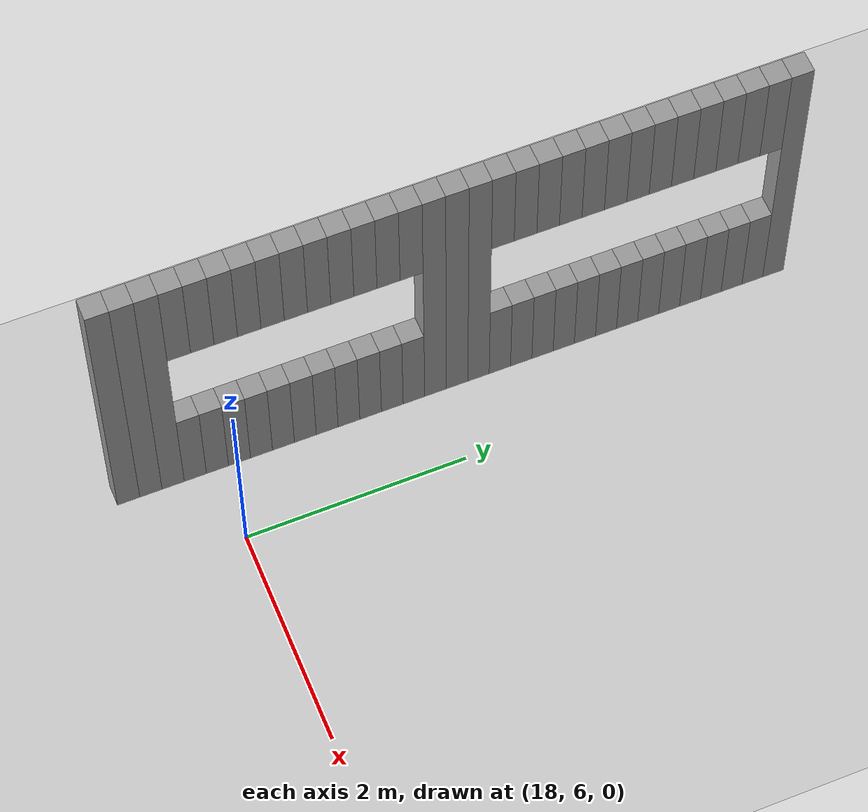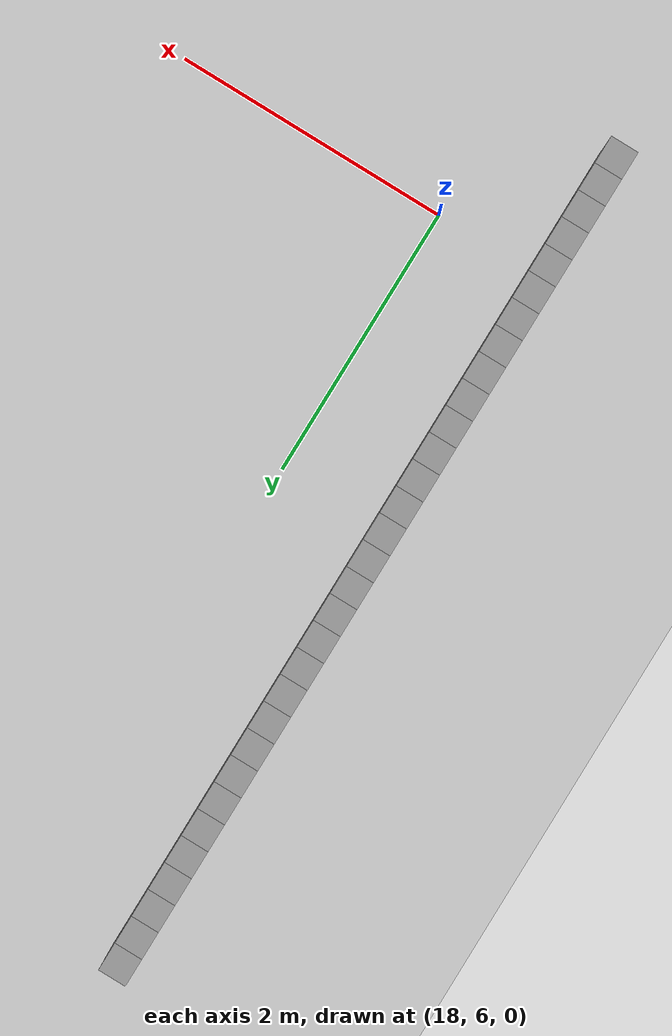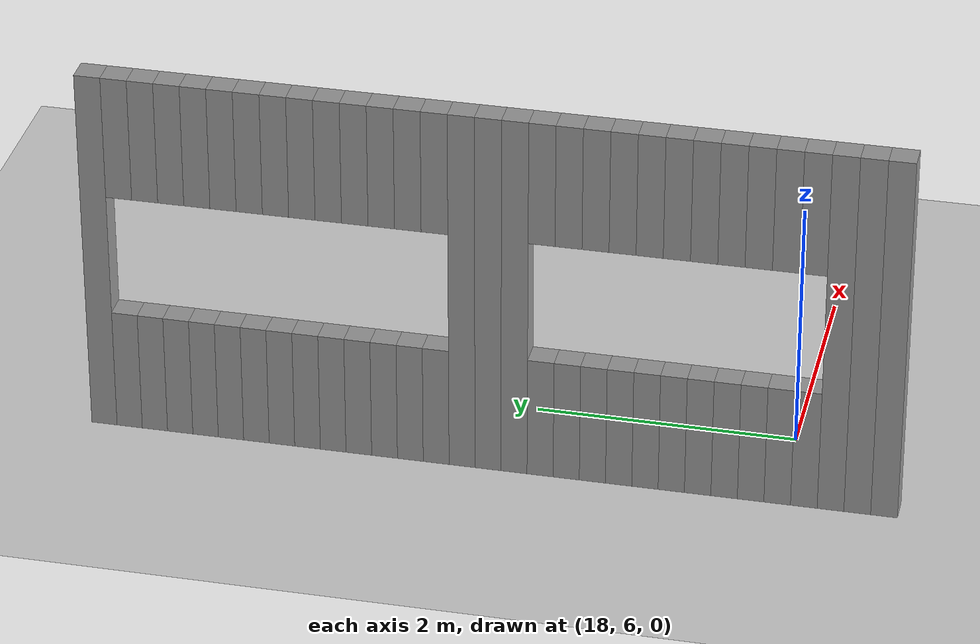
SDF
<sdf version="1.7">
 <world name="default">
  <model name="ground_plane">
   <static>1</static>
   <link name="link">
    <collision name="collision">
     <geometry><plane><normal>0 0 1</normal><size>100 100</size></plane></geometry>
     <surface>
      <contact><collide_bitmask>65535</collide_bitmask></contact>
      <friction><ode><mu>100</mu><mu2>50</mu2></ode></friction>
     </surface>
    </collision>
    <visual name="visual">
     <cast_shadows>0</cast_shadows>
     <geometry><plane><normal>0 0 1</normal><size>100 100</size></plane></geometry>
     <material>
      <script><uri>file://media/materials/scripts/gazebo.material</uri><name>Gazebo/Grey</name></script>
     </material>
    </visual>
   </link>
  </model>
  <model name="05222">
   <pose>-1 -1 0 0 -0 0</pose>
   <link name="Wall_328">
    <collision name="Wall_328_Collision">
     <geometry><box><size>0.2 0.2 3</size></box></geometry>
     <pose>0 0 1.5 0 -0 0</pose>
    </collision>
    <visual name="Wall_328_Visual">
     <pose>0 0 1.5 0 -0 0</pose>
     <geometry><box><size>0.2 0.2 3</size></box></geometry>
     <material>
      <script><uri>file://media/materials/scripts/gazebo.material</uri><name>Gazebo/Grey</name></script>
      <ambient>1 1 1 1</ambient>
     </material>
     <meta><layer>0</layer></meta>
    </visual>
    <pose>18.2 6.2 0 0 -0 0</pose>
   </link>
   <link name="Wall_332">
    <collision name="Wall_332_Collision">
     <geometry><box><size>0.2 0.2 3</size></box></geometry>
     <pose>0 0 1.5 0 -0 0</pose>
    </collision>
    <visual name="Wall_332_Visual">
     <pose>0 0 1.5 0 -0 0</pose>
     <geometry><box><size>0.2 0.2 3</size></box></geometry>
     <material>
      <script><uri>file://media/materials/scripts/gazebo.material</uri><name>Gazebo/Grey</name></script>
      <ambient>1 1 1 1</ambient>
     </material>
     <meta><layer>0</layer></meta>
    </visual>
    <pose>18.2 6.4 0 0 -0 0</pose>
   </link>
   <link name="Wall_336">
    <collision name="Wall_336_Collision">
     <geometry><box><size>0.2 0.2 3</size></box></geometry>
     <pose>0 0 1.5 0 -0 0</pose>
    </collision>
    <visual name="Wall_336_Visual">
     <pose>0 0 1.5 0 -0 0</pose>
     <geometry><box><size>0.2 0.2 3</size></box></geometry>
     <material>
      <script><uri>file://media/materials/scripts/gazebo.material</uri><name>Gazebo/Grey</name></script>
      <ambient>1 1 1 1</ambient>
     </material>
     <meta><layer>0</layer></meta>
    </visual>
    <pose>18.2 6.6000000000000005 0 0 -0 0</pose>
   </link>
   <link name="Wall_340">
    <collision name="Wall_340_Collision">
     <geometry><box><size>0.2 0.2 1.0</size></box></geometry>
     <pose>0 0 0.5 0 -0 0</pose>
    </collision>
    <visual name="Wall_340_Visual">
     <pose>0 0 0.5 0 -0 0</pose>
     <geometry><box><size>0.2 0.2 1.0</size></box></geometry>
     <material>
      <script><uri>file://media/materials/scripts/gazebo.material</uri><name>Gazebo/Grey</name></script>
      <ambient>1 1 1 1</ambient>
     </material>
     <meta><layer>0</layer></meta>
    </visual>
    <pose>18.2 6.800000000000001 0 0 -0 0</pose>
   </link>
   <link name="Wall_341">
    <collision name="Wall_341_Collision">
     <geometry><box><size>0.2 0.2 1.0</size></box></geometry>
     <pose>0 0 2.5 0 -0 0</pose>
    </collision>
    <visual name="Wall_341_Visual">
     <pose>0 0 2.5 0 -0 0</pose>
     <geometry><box><size>0.2 0.2 1.0</size></box></geometry>
     <material>
      <script><uri>file://media/materials/scripts/gazebo.material</uri><name>Gazebo/Grey</name></script>
      <ambient>1 1 1 1</ambient>
     </material>
     <meta><layer>0</layer></meta>
    </visual>
    <pose>18.2 6.800000000000001 0 0 -0 0</pose>
   </link>
   <link name="Window_340">
    <collision name="Window_340_Collision">
     <geometry><box><size>0.2 0.2 1.0</size></box></geometry>
     <pose>0 0 1.5 0 -0 0</pose>
    </collision>
    <visual name="Wall_341_Visual">
     <pose>0 0 2.5 0 -0 0</pose>
     <geometry><box><size>0.2 0.2 1.0</size></box></geometry>
     <material>
      <script><uri>file://media/materials/scripts/gazebo.material</uri><name>Gazebo/Grey</name></script>
      <ambient>1 1 1 1</ambient>
     </material>
     <meta><layer>0</layer></meta>
    </visual>
    <pose>18.2 6.800000000000001 0 0 -0 0</pose>
   </link>
   <link name="Wall_345">
    <collision name="Wall_345_Collision">
     <geometry><box><size>0.2 0.2 1.0</size></box></geometry>
     <pose>0 0 0.5 0 -0 0</pose>
    </collision>
    <visual name="Wall_345_Visual">
     <pose>0 0 0.5 0 -0 0</pose>
     <geometry><box><size>0.2 0.2 1.0</size></box></geometry>
     <material>
      <script><uri>file://media/materials/scripts/gazebo.material</uri><name>Gazebo/Grey</name></script>
      <ambient>1 1 1 1</ambient>
     </material>
     <meta><layer>0</layer></meta>
    </visual>
    <pose>18.2 7.0 0 0 -0 0</pose>
   </link>
   <link name="Wall_346">
    <collision name="Wall_346_Collision">
     <geometry><box><size>0.2 0.2 1.0</size></box></geometry>
     <pose>0 0 2.5 0 -0 0</pose>
    </collision>
    <visual name="Wall_346_Visual">
     <pose>0 0 2.5 0 -0 0</pose>
     <geometry><box><size>0.2 0.2 1.0</size></box></geometry>
     <material>
      <script><uri>file://media/materials/scripts/gazebo.material</uri><name>Gazebo/Grey</name></script>
      <ambient>1 1 1 1</ambient>
     </material>
     <meta><layer>0</layer></meta>
    </visual>
    <pose>18.2 7.0 0 0 -0 0</pose>
   </link>
   <link name="Window_345">
    <collision name="Window_345_Collision">
     <geometry><box><size>0.2 0.2 1.0</size></box></geometry>
     <pose>0 0 1.5 0 -0 0</pose>
    </collision>
    <visual name="Wall_346_Visual">
     <pose>0 0 2.5 0 -0 0</pose>
     <geometry><box><size>0.2 0.2 1.0</size></box></geometry>
     <material>
      <script><uri>file://media/materials/scripts/gazebo.material</uri><name>Gazebo/Grey</name></script>
      <ambient>1 1 1 1</ambient>
     </material>
     <meta><layer>0</layer></meta>
    </visual>
    <pose>18.2 7.0 0 0 -0 0</pose>
   </link>
   <link name="Wall_349">
    <collision name="Wall_349_Collision">
     <geometry><box><size>0.2 0.2 1.0</size></box></geometry>
     <pose>0 0 0.5 0 -0 0</pose>
    </collision>
    <visual name="Wall_349_Visual">
     <pose>0 0 0.5 0 -0 0</pose>
     <geometry><box><size>0.2 0.2 1.0</size></box></geometry>
     <material>
      <script><uri>file://media/materials/scripts/gazebo.material</uri><name>Gazebo/Grey</name></script>
      <ambient>1 1 1 1</ambient>
     </material>
     <meta><layer>0</layer></meta>
    </visual>
    <pose>18.2 7.2 0 0 -0 0</pose>
   </link>
   <link name="Wall_350">
    <collision name="Wall_350_Collision">
     <geometry><box><size>0.2 0.2 1.0</size></box></geometry>
     <pose>0 0 2.5 0 -0 0</pose>
    </collision>
    <visual name="Wall_350_Visual">
     <pose>0 0 2.5 0 -0 0</pose>
     <geometry><box><size>0.2 0.2 1.0</size></box></geometry>
     <material>
      <script><uri>file://media/materials/scripts/gazebo.material</uri><name>Gazebo/Grey</name></script>
      <ambient>1 1 1 1</ambient>
     </material>
     <meta><layer>0</layer></meta>
    </visual>
    <pose>18.2 7.2 0 0 -0 0</pose>
   </link>
   <link name="Window_349">
    <collision name="Window_349_Collision">
     <geometry><box><size>0.2 0.2 1.0</size></box></geometry>
     <pose>0 0 1.5 0 -0 0</pose>
    </collision>
    <visual name="Wall_350_Visual">
     <pose>0 0 2.5 0 -0 0</pose>
     <geometry><box><size>0.2 0.2 1.0</size></box></geometry>
     <material>
      <script><uri>file://media/materials/scripts/gazebo.material</uri><name>Gazebo/Grey</name></script>
      <ambient>1 1 1 1</ambient>
     </material>
     <meta><layer>0</layer></meta>
    </visual>
    <pose>18.2 7.2 0 0 -0 0</pose>
   </link>
   <link name="Wall_352">
    <collision name="Wall_352_Collision">
     <geometry><box><size>0.2 0.2 1.0</size></box></geometry>
     <pose>0 0 0.5 0 -0 0</pose>
    </collision>
    <visual name="Wall_352_Visual">
     <pose>0 0 0.5 0 -0 0</pose>
     <geometry><box><size>0.2 0.2 1.0</size></box></geometry>
     <material>
      <script><uri>file://media/materials/scripts/gazebo.material</uri><name>Gazebo/Grey</name></script>
      <ambient>1 1 1 1</ambient>
     </material>
     <meta><layer>0</layer></meta>
    </visual>
    <pose>18.2 7.4 0 0 -0 0</pose>
   </link>
   <link name="Wall_353">
    <collision name="Wall_353_Collision">
     <geometry><box><size>0.2 0.2 1.0</size></box></geometry>
     <pose>0 0 2.5 0 -0 0</pose>
    </collision>
    <visual name="Wall_353_Visual">
     <pose>0 0 2.5 0 -0 0</pose>
     <geometry><box><size>0.2 0.2 1.0</size></box></geometry>
     <material>
      <script><uri>file://media/materials/scripts/gazebo.material</uri><name>Gazebo/Grey</name></script>
      <ambient>1 1 1 1</ambient>
     </material>
     <meta><layer>0</layer></meta>
    </visual>
    <pose>18.2 7.4 0 0 -0 0</pose>
   </link>
   <link name="Window_352">
    <collision name="Window_352_Collision">
     <geometry><box><size>0.2 0.2 1.0</size></box></geometry>
     <pose>0 0 1.5 0 -0 0</pose>
    </collision>
    <visual name="Wall_353_Visual">
     <pose>0 0 2.5 0 -0 0</pose>
     <geometry><box><size>0.2 0.2 1.0</size></box></geometry>
     <material>
      <script><uri>file://media/materials/scripts/gazebo.material</uri><name>Gazebo/Grey</name></script>
      <ambient>1 1 1 1</ambient>
     </material>
     <meta><layer>0</layer></meta>
    </visual>
    <pose>18.2 7.4 0 0 -0 0</pose>
   </link>
   <link name="Wall_355">
    <collision name="Wall_355_Collision">
     <geometry><box><size>0.2 0.2 1.0</size></box></geometry>
     <pose>0 0 0.5 0 -0 0</pose>
    </collision>
    <visual name="Wall_355_Visual">
     <pose>0 0 0.5 0 -0 0</pose>
     <geometry><box><size>0.2 0.2 1.0</size></box></geometry>
     <material>
      <script><uri>file://media/materials/scripts/gazebo.material</uri><name>Gazebo/Grey</name></script>
      <ambient>1 1 1 1</ambient>
     </material>
     <meta><layer>0</layer></meta>
    </visual>
    <pose>18.2 7.6000000000000005 0 0 -0 0</pose>
   </link>
   <link name="Wall_356">
    <collision name="Wall_356_Collision">
     <geometry><box><size>0.2 0.2 1.0</size></box></geometry>
     <pose>0 0 2.5 0 -0 0</pose>
    </collision>
    <visual name="Wall_356_Visual">
     <pose>0 0 2.5 0 -0 0</pose>
     <geometry><box><size>0.2 0.2 1.0</size></box></geometry>
     <material>
      <script><uri>file://media/materials/scripts/gazebo.material</uri><name>Gazebo/Grey</name></script>
      <ambient>1 1 1 1</ambient>
     </material>
     <meta><layer>0</layer></meta>
    </visual>
    <pose>18.2 7.6000000000000005 0 0 -0 0</pose>
   </link>
   <link name="Window_355">
    <collision name="Window_355_Collision">
     <geometry><box><size>0.2 0.2 1.0</size></box></geometry>
     <pose>0 0 1.5 0 -0 0</pose>
    </collision>
    <visual name="Wall_356_Visual">
     <pose>0 0 2.5 0 -0 0</pose>
     <geometry><box><size>0.2 0.2 1.0</size></box></geometry>
     <material>
      <script><uri>file://media/materials/scripts/gazebo.material</uri><name>Gazebo/Grey</name></script>
      <ambient>1 1 1 1</ambient>
     </material>
     <meta><layer>0</layer></meta>
    </visual>
    <pose>18.2 7.6000000000000005 0 0 -0 0</pose>
   </link>
   <link name="Wall_359">
    <collision name="Wall_359_Collision">
     <geometry><box><size>0.2 0.2 1.0</size></box></geometry>
     <pose>0 0 0.5 0 -0 0</pose>
    </collision>
    <visual name="Wall_359_Visual">
     <pose>0 0 0.5 0 -0 0</pose>
     <geometry><box><size>0.2 0.2 1.0</size></box></geometry>
     <material>
      <script><uri>file://media/materials/scripts/gazebo.material</uri><name>Gazebo/Grey</name></script>
      <ambient>1 1 1 1</ambient>
     </material>
     <meta><layer>0</layer></meta>
    </visual>
    <pose>18.2 7.800000000000001 0 0 -0 0</pose>
   </link>
   <link name="Wall_360">
    <collision name="Wall_360_Collision">
     <geometry><box><size>0.2 0.2 1.0</size></box></geometry>
     <pose>0 0 2.5 0 -0 0</pose>
    </collision>
    <visual name="Wall_360_Visual">
     <pose>0 0 2.5 0 -0 0</pose>
     <geometry><box><size>0.2 0.2 1.0</size></box></geometry>
     <material>
      <script><uri>file://media/materials/scripts/gazebo.material</uri><name>Gazebo/Grey</name></script>
      <ambient>1 1 1 1</ambient>
     </material>
     <meta><layer>0</layer></meta>
    </visual>
    <pose>18.2 7.800000000000001 0 0 -0 0</pose>
   </link>
   <link name="Window_359">
    <collision name="Window_359_Collision">
     <geometry><box><size>0.2 0.2 1.0</size></box></geometry>
     <pose>0 0 1.5 0 -0 0</pose>
    </collision>
    <visual name="Wall_360_Visual">
     <pose>0 0 2.5 0 -0 0</pose>
     <geometry><box><size>0.2 0.2 1.0</size></box></geometry>
     <material>
      <script><uri>file://media/materials/scripts/gazebo.material</uri><name>Gazebo/Grey</name></script>
      <ambient>1 1 1 1</ambient>
     </material>
     <meta><layer>0</layer></meta>
    </visual>
    <pose>18.2 7.800000000000001 0 0 -0 0</pose>
   </link>
   <link name="Wall_363">
    <collision name="Wall_363_Collision">
     <geometry><box><size>0.2 0.2 1.0</size></box></geometry>
     <pose>0 0 0.5 0 -0 0</pose>
    </collision>
    <visual name="Wall_363_Visual">
     <pose>0 0 0.5 0 -0 0</pose>
     <geometry><box><size>0.2 0.2 1.0</size></box></geometry>
     <material>
      <script><uri>file://media/materials/scripts/gazebo.material</uri><name>Gazebo/Grey</name></script>
      <ambient>1 1 1 1</ambient>
     </material>
     <meta><layer>0</layer></meta>
    </visual>
    <pose>18.2 8.0 0 0 -0 0</pose>
   </link>
   <link name="Wall_364">
    <collision name="Wall_364_Collision">
     <geometry><box><size>0.2 0.2 1.0</size></box></geometry>
     <pose>0 0 2.5 0 -0 0</pose>
    </collision>
    <visual name="Wall_364_Visual">
     <pose>0 0 2.5 0 -0 0</pose>
     <geometry><box><size>0.2 0.2 1.0</size></box></geometry>
     <material>
      <script><uri>file://media/materials/scripts/gazebo.material</uri><name>Gazebo/Grey</name></script>
      <ambient>1 1 1 1</ambient>
     </material>
     <meta><layer>0</layer></meta>
    </visual>
    <pose>18.2 8.0 0 0 -0 0</pose>
   </link>
   <link name="Window_363">
    <collision name="Window_363_Collision">
     <geometry><box><size>0.2 0.2 1.0</size></box></geometry>
     <pose>0 0 1.5 0 -0 0</pose>
    </collision>
    <visual name="Wall_364_Visual">
     <pose>0 0 2.5 0 -0 0</pose>
     <geometry><box><size>0.2 0.2 1.0</size></box></geometry>
     <material>
      <script><uri>file://media/materials/scripts/gazebo.material</uri><name>Gazebo/Grey</name></script>
      <ambient>1 1 1 1</ambient>
     </material>
     <meta><layer>0</layer></meta>
    </visual>
    <pose>18.2 8.0 0 0 -0 0</pose>
   </link>
   <link name="Wall_367">
    <collision name="Wall_367_Collision">
     <geometry><box><size>0.2 0.2 1.0</size></box></geometry>
     <pose>0 0 0.5 0 -0 0</pose>
    </collision>
    <visual name="Wall_367_Visual">
     <pose>0 0 0.5 0 -0 0</pose>
     <geometry><box><size>0.2 0.2 1.0</size></box></geometry>
     <material>
      <script><uri>file://media/materials/scripts/gazebo.material</uri><name>Gazebo/Grey</name></script>
      <ambient>1 1 1 1</ambient>
     </material>
     <meta><layer>0</layer></meta>
    </visual>
    <pose>18.2 8.200000000000001 0 0 -0 0</pose>
   </link>
   <link name="Wall_368">
    <collision name="Wall_368_Collision">
     <geometry><box><size>0.2 0.2 1.0</size></box></geometry>
     <pose>0 0 2.5 0 -0 0</pose>
    </collision>
    <visual name="Wall_368_Visual">
     <pose>0 0 2.5 0 -0 0</pose>
     <geometry><box><size>0.2 0.2 1.0</size></box></geometry>
     <material>
      <script><uri>file://media/materials/scripts/gazebo.material</uri><name>Gazebo/Grey</name></script>
      <ambient>1 1 1 1</ambient>
     </material>
     <meta><layer>0</layer></meta>
    </visual>
    <pose>18.2 8.200000000000001 0 0 -0 0</pose>
   </link>
   <link name="Window_367">
    <collision name="Window_367_Collision">
     <geometry><box><size>0.2 0.2 1.0</size></box></geometry>
     <pose>0 0 1.5 0 -0 0</pose>
    </collision>
    <visual name="Wall_368_Visual">
     <pose>0 0 2.5 0 -0 0</pose>
     <geometry><box><size>0.2 0.2 1.0</size></box></geometry>
     <material>
      <script><uri>file://media/materials/scripts/gazebo.material</uri><name>Gazebo/Grey</name></script>
      <ambient>1 1 1 1</ambient>
     </material>
     <meta><layer>0</layer></meta>
    </visual>
    <pose>18.2 8.200000000000001 0 0 -0 0</pose>
   </link>
   <link name="Wall_371">
    <collision name="Wall_371_Collision">
     <geometry><box><size>0.2 0.2 1.0</size></box></geometry>
     <pose>0 0 0.5 0 -0 0</pose>
    </collision>
    <visual name="Wall_371_Visual">
     <pose>0 0 0.5 0 -0 0</pose>
     <geometry><box><size>0.2 0.2 1.0</size></box></geometry>
     <material>
      <script><uri>file://media/materials/scripts/gazebo.material</uri><name>Gazebo/Grey</name></script>
      <ambient>1 1 1 1</ambient>
     </material>
     <meta><layer>0</layer></meta>
    </visual>
    <pose>18.2 8.4 0 0 -0 0</pose>
   </link>
   <link name="Wall_372">
    <collision name="Wall_372_Collision">
     <geometry><box><size>0.2 0.2 1.0</size></box></geometry>
     <pose>0 0 2.5 0 -0 0</pose>
    </collision>
    <visual name="Wall_372_Visual">
     <pose>0 0 2.5 0 -0 0</pose>
     <geometry><box><size>0.2 0.2 1.0</size></box></geometry>
     <material>
      <script><uri>file://media/materials/scripts/gazebo.material</uri><name>Gazebo/Grey</name></script>
      <ambient>1 1 1 1</ambient>
     </material>
     <meta><layer>0</layer></meta>
    </visual>
    <pose>18.2 8.4 0 0 -0 0</pose>
   </link>
   <link name="Window_371">
    <collision name="Window_371_Collision">
     <geometry><box><size>0.2 0.2 1.0</size></box></geometry>
     <pose>0 0 1.5 0 -0 0</pose>
    </collision>
    <visual name="Wall_372_Visual">
     <pose>0 0 2.5 0 -0 0</pose>
     <geometry><box><size>0.2 0.2 1.0</size></box></geometry>
     <material>
      <script><uri>file://media/materials/scripts/gazebo.material</uri><name>Gazebo/Grey</name></script>
      <ambient>1 1 1 1</ambient>
     </material>
     <meta><layer>0</layer></meta>
    </visual>
    <pose>18.2 8.4 0 0 -0 0</pose>
   </link>
   <link name="Wall_375">
    <collision name="Wall_375_Collision">
     <geometry><box><size>0.2 0.2 1.0</size></box></geometry>
     <pose>0 0 0.5 0 -0 0</pose>
    </collision>
    <visual name="Wall_375_Visual">
     <pose>0 0 0.5 0 -0 0</pose>
     <geometry><box><size>0.2 0.2 1.0</size></box></geometry>
     <material>
      <script><uri>file://media/materials/scripts/gazebo.material</uri><name>Gazebo/Grey</name></script>
      <ambient>1 1 1 1</ambient>
     </material>
     <meta><layer>0</layer></meta>
    </visual>
    <pose>18.2 8.6 0 0 -0 0</pose>
   </link>
   <link name="Wall_376">
    <collision name="Wall_376_Collision">
     <geometry><box><size>0.2 0.2 1.0</size></box></geometry>
     <pose>0 0 2.5 0 -0 0</pose>
    </collision>
    <visual name="Wall_376_Visual">
     <pose>0 0 2.5 0 -0 0</pose>
     <geometry><box><size>0.2 0.2 1.0</size></box></geometry>
     <material>
      <script><uri>file://media/materials/scripts/gazebo.material</uri><name>Gazebo/Grey</name></script>
      <ambient>1 1 1 1</ambient>
     </material>
     <meta><layer>0</layer></meta>
    </visual>
    <pose>18.2 8.6 0 0 -0 0</pose>
   </link>
   <link name="Window_375">
    <collision name="Window_375_Collision">
     <geometry><box><size>0.2 0.2 1.0</size></box></geometry>
     <pose>0 0 1.5 0 -0 0</pose>
    </collision>
    <visual name="Wall_376_Visual">
     <pose>0 0 2.5 0 -0 0</pose>
     <geometry><box><size>0.2 0.2 1.0</size></box></geometry>
     <material>
      <script><uri>file://media/materials/scripts/gazebo.material</uri><name>Gazebo/Grey</name></script>
      <ambient>1 1 1 1</ambient>
     </material>
     <meta><layer>0</layer></meta>
    </visual>
    <pose>18.2 8.6 0 0 -0 0</pose>
   </link>
   <link name="Wall_418">
    <collision name="Wall_418_Collision">
     <geometry><box><size>0.2 0.2 1.0</size></box></geometry>
     <pose>0 0 0.5 0 -0 0</pose>
    </collision>
    <visual name="Wall_418_Visual">
     <pose>0 0 0.5 0 -0 0</pose>
     <geometry><box><size>0.2 0.2 1.0</size></box></geometry>
     <material>
      <script><uri>file://media/materials/scripts/gazebo.material</uri><name>Gazebo/Grey</name></script>
      <ambient>1 1 1 1</ambient>
     </material>
     <meta><layer>0</layer></meta>
    </visual>
    <pose>18.2 8.8 0 0 -0 0</pose>
   </link>
   <link name="Wall_419">
    <collision name="Wall_419_Collision">
     <geometry><box><size>0.2 0.2 1.0</size></box></geometry>
     <pose>0 0 2.5 0 -0 0</pose>
    </collision>
    <visual name="Wall_419_Visual">
     <pose>0 0 2.5 0 -0 0</pose>
     <geometry><box><size>0.2 0.2 1.0</size></box></geometry>
     <material>
      <script><uri>file://media/materials/scripts/gazebo.material</uri><name>Gazebo/Grey</name></script>
      <ambient>1 1 1 1</ambient>
     </material>
     <meta><layer>0</layer></meta>
    </visual>
    <pose>18.2 8.8 0 0 -0 0</pose>
   </link>
   <link name="Window_418">
    <collision name="Window_418_Collision">
     <geometry><box><size>0.2 0.2 1.0</size></box></geometry>
     <pose>0 0 1.5 0 -0 0</pose>
    </collision>
    <visual name="Wall_419_Visual">
     <pose>0 0 2.5 0 -0 0</pose>
     <geometry><box><size>0.2 0.2 1.0</size></box></geometry>
     <material>
      <script><uri>file://media/materials/scripts/gazebo.material</uri><name>Gazebo/Grey</name></script>
      <ambient>1 1 1 1</ambient>
     </material>
     <meta><layer>0</layer></meta>
    </visual>
    <pose>18.2 8.8 0 0 -0 0</pose>
   </link>
   <link name="Wall_442">
    <collision name="Wall_442_Collision">
     <geometry><box><size>0.2 0.2 3</size></box></geometry>
     <pose>0 0 1.5 0 -0 0</pose>
    </collision>
    <visual name="Wall_442_Visual">
     <pose>0 0 1.5 0 -0 0</pose>
     <geometry><box><size>0.2 0.2 3</size></box></geometry>
     <material>
      <script><uri>file://media/materials/scripts/gazebo.material</uri><name>Gazebo/Grey</name></script>
      <ambient>1 1 1 1</ambient>
     </material>
     <meta><layer>0</layer></meta>
    </visual>
    <pose>18.2 9.0 0 0 -0 0</pose>
   </link>
   <link name="Wall_467">
    <collision name="Wall_467_Collision">
     <geometry><box><size>0.2 0.2 3</size></box></geometry>
     <pose>0 0 1.5 0 -0 0</pose>
    </collision>
    <visual name="Wall_467_Visual">
     <pose>0 0 1.5 0 -0 0</pose>
     <geometry><box><size>0.2 0.2 3</size></box></geometry>
     <material>
      <script><uri>file://media/materials/scripts/gazebo.material</uri><name>Gazebo/Grey</name></script>
      <ambient>1 1 1 1</ambient>
     </material>
     <meta><layer>0</layer></meta>
    </visual>
    <pose>18.2 9.200000000000001 0 0 -0 0</pose>
   </link>
   <link name="Wall_474">
    <collision name="Wall_474_Collision">
     <geometry><box><size>0.2 0.2 3</size></box></geometry>
     <pose>0 0 1.5 0 -0 0</pose>
    </collision>
    <visual name="Wall_474_Visual">
     <pose>0 0 1.5 0 -0 0</pose>
     <geometry><box><size>0.2 0.2 3</size></box></geometry>
     <material>
      <script><uri>file://media/materials/scripts/gazebo.material</uri><name>Gazebo/Grey</name></script>
      <ambient>1 1 1 1</ambient>
     </material>
     <meta><layer>0</layer></meta>
    </visual>
    <pose>18.2 9.4 0 0 -0 0</pose>
   </link>
   <link name="Wall_481">
    <collision name="Wall_481_Collision">
     <geometry><box><size>0.2 0.2 1.0</size></box></geometry>
     <pose>0 0 0.5 0 -0 0</pose>
    </collision>
    <visual name="Wall_481_Visual">
     <pose>0 0 0.5 0 -0 0</pose>
     <geometry><box><size>0.2 0.2 1.0</size></box></geometry>
     <material>
      <script><uri>file://media/materials/scripts/gazebo.material</uri><name>Gazebo/Grey</name></script>
      <ambient>1 1 1 1</ambient>
     </material>
     <meta><layer>0</layer></meta>
    </visual>
    <pose>18.2 9.600000000000001 0 0 -0 0</pose>
   </link>
   <link name="Wall_482">
    <collision name="Wall_482_Collision">
     <geometry><box><size>0.2 0.2 1.0</size></box></geometry>
     <pose>0 0 2.5 0 -0 0</pose>
    </collision>
    <visual name="Wall_482_Visual">
     <pose>0 0 2.5 0 -0 0</pose>
     <geometry><box><size>0.2 0.2 1.0</size></box></geometry>
     <material>
      <script><uri>file://media/materials/scripts/gazebo.material</uri><name>Gazebo/Grey</name></script>
      <ambient>1 1 1 1</ambient>
     </material>
     <meta><layer>0</layer></meta>
    </visual>
    <pose>18.2 9.600000000000001 0 0 -0 0</pose>
   </link>
   <link name="Window_481">
    <collision name="Window_481_Collision">
     <geometry><box><size>0.2 0.2 1.0</size></box></geometry>
     <pose>0 0 1.5 0 -0 0</pose>
    </collision>
    <visual name="Wall_482_Visual">
     <pose>0 0 2.5 0 -0 0</pose>
     <geometry><box><size>0.2 0.2 1.0</size></box></geometry>
     <material>
      <script><uri>file://media/materials/scripts/gazebo.material</uri><name>Gazebo/Grey</name></script>
      <ambient>1 1 1 1</ambient>
     </material>
     <meta><layer>0</layer></meta>
    </visual>
    <pose>18.2 9.600000000000001 0 0 -0 0</pose>
   </link>
   <link name="Wall_488">
    <collision name="Wall_488_Collision">
     <geometry><box><size>0.2 0.2 1.0</size></box></geometry>
     <pose>0 0 0.5 0 -0 0</pose>
    </collision>
    <visual name="Wall_488_Visual">
     <pose>0 0 0.5 0 -0 0</pose>
     <geometry><box><size>0.2 0.2 1.0</size></box></geometry>
     <material>
      <script><uri>file://media/materials/scripts/gazebo.material</uri><name>Gazebo/Grey</name></script>
      <ambient>1 1 1 1</ambient>
     </material>
     <meta><layer>0</layer></meta>
    </visual>
    <pose>18.2 9.8 0 0 -0 0</pose>
   </link>
   <link name="Wall_489">
    <collision name="Wall_489_Collision">
     <geometry><box><size>0.2 0.2 1.0</size></box></geometry>
     <pose>0 0 2.5 0 -0 0</pose>
    </collision>
    <visual name="Wall_489_Visual">
     <pose>0 0 2.5 0 -0 0</pose>
     <geometry><box><size>0.2 0.2 1.0</size></box></geometry>
     <material>
      <script><uri>file://media/materials/scripts/gazebo.material</uri><name>Gazebo/Grey</name></script>
      <ambient>1 1 1 1</ambient>
     </material>
     <meta><layer>0</layer></meta>
    </visual>
    <pose>18.2 9.8 0 0 -0 0</pose>
   </link>
   <link name="Window_488">
    <collision name="Window_488_Collision">
     <geometry><box><size>0.2 0.2 1.0</size></box></geometry>
     <pose>0 0 1.5 0 -0 0</pose>
    </collision>
    <visual name="Wall_489_Visual">
     <pose>0 0 2.5 0 -0 0</pose>
     <geometry><box><size>0.2 0.2 1.0</size></box></geometry>
     <material>
      <script><uri>file://media/materials/scripts/gazebo.material</uri><name>Gazebo/Grey</name></script>
      <ambient>1 1 1 1</ambient>
     </material>
     <meta><layer>0</layer></meta>
    </visual>
    <pose>18.2 9.8 0 0 -0 0</pose>
   </link>
   <link name="Wall_495">
    <collision name="Wall_495_Collision">
     <geometry><box><size>0.2 0.2 1.0</size></box></geometry>
     <pose>0 0 0.5 0 -0 0</pose>
    </collision>
    <visual name="Wall_495_Visual">
     <pose>0 0 0.5 0 -0 0</pose>
     <geometry><box><size>0.2 0.2 1.0</size></box></geometry>
     <material>
      <script><uri>file://media/materials/scripts/gazebo.material</uri><name>Gazebo/Grey</name></script>
      <ambient>1 1 1 1</ambient>
     </material>
     <meta><layer>0</layer></meta>
    </visual>
    <pose>18.2 10.0 0 0 -0 0</pose>
   </link>
   <link name="Wall_496">
    <collision name="Wall_496_Collision">
     <geometry><box><size>0.2 0.2 1.0</size></box></geometry>
     <pose>0 0 2.5 0 -0 0</pose>
    </collision>
    <visual name="Wall_496_Visual">
     <pose>0 0 2.5 0 -0 0</pose>
     <geometry><box><size>0.2 0.2 1.0</size></box></geometry>
     <material>
      <script><uri>file://media/materials/scripts/gazebo.material</uri><name>Gazebo/Grey</name></script>
      <ambient>1 1 1 1</ambient>
     </material>
     <meta><layer>0</layer></meta>
    </visual>
    <pose>18.2 10.0 0 0 -0 0</pose>
   </link>
   <link name="Window_495">
    <collision name="Window_495_Collision">
     <geometry><box><size>0.2 0.2 1.0</size></box></geometry>
     <pose>0 0 1.5 0 -0 0</pose>
    </collision>
    <visual name="Wall_496_Visual">
     <pose>0 0 2.5 0 -0 0</pose>
     <geometry><box><size>0.2 0.2 1.0</size></box></geometry>
     <material>
      <script><uri>file://media/materials/scripts/gazebo.material</uri><name>Gazebo/Grey</name></script>
      <ambient>1 1 1 1</ambient>
     </material>
     <meta><layer>0</layer></meta>
    </visual>
    <pose>18.2 10.0 0 0 -0 0</pose>
   </link>
   <link name="Wall_501">
    <collision name="Wall_501_Collision">
     <geometry><box><size>0.2 0.2 1.0</size></box></geometry>
     <pose>0 0 0.5 0 -0 0</pose>
    </collision>
    <visual name="Wall_501_Visual">
     <pose>0 0 0.5 0 -0 0</pose>
     <geometry><box><size>0.2 0.2 1.0</size></box></geometry>
     <material>
      <script><uri>file://media/materials/scripts/gazebo.material</uri><name>Gazebo/Grey</name></script>
      <ambient>1 1 1 1</ambient>
     </material>
     <meta><layer>0</layer></meta>
    </visual>
    <pose>18.2 10.200000000000001 0 0 -0 0</pose>
   </link>
   <link name="Wall_502">
    <collision name="Wall_502_Collision">
     <geometry><box><size>0.2 0.2 1.0</size></box></geometry>
     <pose>0 0 2.5 0 -0 0</pose>
    </collision>
    <visual name="Wall_502_Visual">
     <pose>0 0 2.5 0 -0 0</pose>
     <geometry><box><size>0.2 0.2 1.0</size></box></geometry>
     <material>
      <script><uri>file://media/materials/scripts/gazebo.material</uri><name>Gazebo/Grey</name></script>
      <ambient>1 1 1 1</ambient>
     </material>
     <meta><layer>0</layer></meta>
    </visual>
    <pose>18.2 10.200000000000001 0 0 -0 0</pose>
   </link>
   <link name="Window_501">
    <collision name="Window_501_Collision">
     <geometry><box><size>0.2 0.2 1.0</size></box></geometry>
     <pose>0 0 1.5 0 -0 0</pose>
    </collision>
    <visual name="Wall_502_Visual">
     <pose>0 0 2.5 0 -0 0</pose>
     <geometry><box><size>0.2 0.2 1.0</size></box></geometry>
     <material>
      <script><uri>file://media/materials/scripts/gazebo.material</uri><name>Gazebo/Grey</name></script>
      <ambient>1 1 1 1</ambient>
     </material>
     <meta><layer>0</layer></meta>
    </visual>
    <pose>18.2 10.200000000000001 0 0 -0 0</pose>
   </link>
   <link name="Wall_507">
    <collision name="Wall_507_Collision">
     <geometry><box><size>0.2 0.2 1.0</size></box></geometry>
     <pose>0 0 0.5 0 -0 0</pose>
    </collision>
    <visual name="Wall_507_Visual">
     <pose>0 0 0.5 0 -0 0</pose>
     <geometry><box><size>0.2 0.2 1.0</size></box></geometry>
     <material>
      <script><uri>file://media/materials/scripts/gazebo.material</uri><name>Gazebo/Grey</name></script>
      <ambient>1 1 1 1</ambient>
     </material>
     <meta><layer>0</layer></meta>
    </visual>
    <pose>18.2 10.4 0 0 -0 0</pose>
   </link>
   <link name="Wall_508">
    <collision name="Wall_508_Collision">
     <geometry><box><size>0.2 0.2 1.0</size></box></geometry>
     <pose>0 0 2.5 0 -0 0</pose>
    </collision>
    <visual name="Wall_508_Visual">
     <pose>0 0 2.5 0 -0 0</pose>
     <geometry><box><size>0.2 0.2 1.0</size></box></geometry>
     <material>
      <script><uri>file://media/materials/scripts/gazebo.material</uri><name>Gazebo/Grey</name></script>
      <ambient>1 1 1 1</ambient>
     </material>
     <meta><layer>0</layer></meta>
    </visual>
    <pose>18.2 10.4 0 0 -0 0</pose>
   </link>
   <link name="Window_507">
    <collision name="Window_507_Collision">
     <geometry><box><size>0.2 0.2 1.0</size></box></geometry>
     <pose>0 0 1.5 0 -0 0</pose>
    </collision>
    <visual name="Wall_508_Visual">
     <pose>0 0 2.5 0 -0 0</pose>
     <geometry><box><size>0.2 0.2 1.0</size></box></geometry>
     <material>
      <script><uri>file://media/materials/scripts/gazebo.material</uri><name>Gazebo/Grey</name></script>
      <ambient>1 1 1 1</ambient>
     </material>
     <meta><layer>0</layer></meta>
    </visual>
    <pose>18.2 10.4 0 0 -0 0</pose>
   </link>
   <link name="Wall_514">
    <collision name="Wall_514_Collision">
     <geometry><box><size>0.2 0.2 1.0</size></box></geometry>
     <pose>0 0 0.5 0 -0 0</pose>
    </collision>
    <visual name="Wall_514_Visual">
     <pose>0 0 0.5 0 -0 0</pose>
     <geometry><box><size>0.2 0.2 1.0</size></box></geometry>
     <material>
      <script><uri>file://media/materials/scripts/gazebo.material</uri><name>Gazebo/Grey</name></script>
      <ambient>1 1 1 1</ambient>
     </material>
     <meta><layer>0</layer></meta>
    </visual>
    <pose>18.2 10.600000000000001 0 0 -0 0</pose>
   </link>
   <link name="Wall_515">
    <collision name="Wall_515_Collision">
     <geometry><box><size>0.2 0.2 1.0</size></box></geometry>
     <pose>0 0 2.5 0 -0 0</pose>
    </collision>
    <visual name="Wall_515_Visual">
     <pose>0 0 2.5 0 -0 0</pose>
     <geometry><box><size>0.2 0.2 1.0</size></box></geometry>
     <material>
      <script><uri>file://media/materials/scripts/gazebo.material</uri><name>Gazebo/Grey</name></script>
      <ambient>1 1 1 1</ambient>
     </material>
     <meta><layer>0</layer></meta>
    </visual>
    <pose>18.2 10.600000000000001 0 0 -0 0</pose>
   </link>
   <link name="Window_514">
    <collision name="Window_514_Collision">
     <geometry><box><size>0.2 0.2 1.0</size></box></geometry>
     <pose>0 0 1.5 0 -0 0</pose>
    </collision>
    <visual name="Wall_515_Visual">
     <pose>0 0 2.5 0 -0 0</pose>
     <geometry><box><size>0.2 0.2 1.0</size></box></geometry>
     <material>
      <script><uri>file://media/materials/scripts/gazebo.material</uri><name>Gazebo/Grey</name></script>
      <ambient>1 1 1 1</ambient>
     </material>
     <meta><layer>0</layer></meta>
    </visual>
    <pose>18.2 10.600000000000001 0 0 -0 0</pose>
   </link>
   <link name="Wall_519">
    <collision name="Wall_519_Collision">
     <geometry><box><size>0.2 0.2 1.0</size></box></geometry>
     <pose>0 0 0.5 0 -0 0</pose>
    </collision>
    <visual name="Wall_519_Visual">
     <pose>0 0 0.5 0 -0 0</pose>
     <geometry><box><size>0.2 0.2 1.0</size></box></geometry>
     <material>
      <script><uri>file://media/materials/scripts/gazebo.material</uri><name>Gazebo/Grey</name></script>
      <ambient>1 1 1 1</ambient>
     </material>
     <meta><layer>0</layer></meta>
    </visual>
    <pose>18.2 10.8 0 0 -0 0</pose>
   </link>
   <link name="Wall_520">
    <collision name="Wall_520_Collision">
     <geometry><box><size>0.2 0.2 1.0</size></box></geometry>
     <pose>0 0 2.5 0 -0 0</pose>
    </collision>
    <visual name="Wall_520_Visual">
     <pose>0 0 2.5 0 -0 0</pose>
     <geometry><box><size>0.2 0.2 1.0</size></box></geometry>
     <material>
      <script><uri>file://media/materials/scripts/gazebo.material</uri><name>Gazebo/Grey</name></script>
      <ambient>1 1 1 1</ambient>
     </material>
     <meta><layer>0</layer></meta>
    </visual>
    <pose>18.2 10.8 0 0 -0 0</pose>
   </link>
   <link name="Window_519">
    <collision name="Window_519_Collision">
     <geometry><box><size>0.2 0.2 1.0</size></box></geometry>
     <pose>0 0 1.5 0 -0 0</pose>
    </collision>
    <visual name="Wall_520_Visual">
     <pose>0 0 2.5 0 -0 0</pose>
     <geometry><box><size>0.2 0.2 1.0</size></box></geometry>
     <material>
      <script><uri>file://media/materials/scripts/gazebo.material</uri><name>Gazebo/Grey</name></script>
      <ambient>1 1 1 1</ambient>
     </material>
     <meta><layer>0</layer></meta>
    </visual>
    <pose>18.2 10.8 0 0 -0 0</pose>
   </link>
   <link name="Wall_524">
    <collision name="Wall_524_Collision">
     <geometry><box><size>0.2 0.2 1.0</size></box></geometry>
     <pose>0 0 0.5 0 -0 0</pose>
    </collision>
    <visual name="Wall_524_Visual">
     <pose>0 0 0.5 0 -0 0</pose>
     <geometry><box><size>0.2 0.2 1.0</size></box></geometry>
     <material>
      <script><uri>file://media/materials/scripts/gazebo.material</uri><name>Gazebo/Grey</name></script>
      <ambient>1 1 1 1</ambient>
     </material>
     <meta><layer>0</layer></meta>
    </visual>
    <pose>18.2 11.0 0 0 -0 0</pose>
   </link>
   <link name="Wall_525">
    <collision name="Wall_525_Collision">
     <geometry><box><size>0.2 0.2 1.0</size></box></geometry>
     <pose>0 0 2.5 0 -0 0</pose>
    </collision>
    <visual name="Wall_525_Visual">
     <pose>0 0 2.5 0 -0 0</pose>
     <geometry><box><size>0.2 0.2 1.0</size></box></geometry>
     <material>
      <script><uri>file://media/materials/scripts/gazebo.material</uri><name>Gazebo/Grey</name></script>
      <ambient>1 1 1 1</ambient>
     </material>
     <meta><layer>0</layer></meta>
    </visual>
    <pose>18.2 11.0 0 0 -0 0</pose>
   </link>
   <link name="Window_524">
    <collision name="Window_524_Collision">
     <geometry><box><size>0.2 0.2 1.0</size></box></geometry>
     <pose>0 0 1.5 0 -0 0</pose>
    </collision>
    <visual name="Wall_525_Visual">
     <pose>0 0 2.5 0 -0 0</pose>
     <geometry><box><size>0.2 0.2 1.0</size></box></geometry>
     <material>
      <script><uri>file://media/materials/scripts/gazebo.material</uri><name>Gazebo/Grey</name></script>
      <ambient>1 1 1 1</ambient>
     </material>
     <meta><layer>0</layer></meta>
    </visual>
    <pose>18.2 11.0 0 0 -0 0</pose>
   </link>
   <link name="Wall_529">
    <collision name="Wall_529_Collision">
     <geometry><box><size>0.2 0.2 1.0</size></box></geometry>
     <pose>0 0 0.5 0 -0 0</pose>
    </collision>
    <visual name="Wall_529_Visual">
     <pose>0 0 0.5 0 -0 0</pose>
     <geometry><box><size>0.2 0.2 1.0</size></box></geometry>
     <material>
      <script><uri>file://media/materials/scripts/gazebo.material</uri><name>Gazebo/Grey</name></script>
      <ambient>1 1 1 1</ambient>
     </material>
     <meta><layer>0</layer></meta>
    </visual>
    <pose>18.2 11.200000000000001 0 0 -0 0</pose>
   </link>
   <link name="Wall_530">
    <collision name="Wall_530_Collision">
     <geometry><box><size>0.2 0.2 1.0</size></box></geometry>
     <pose>0 0 2.5 0 -0 0</pose>
    </collision>
    <visual name="Wall_530_Visual">
     <pose>0 0 2.5 0 -0 0</pose>
     <geometry><box><size>0.2 0.2 1.0</size></box></geometry>
     <material>
      <script><uri>file://media/materials/scripts/gazebo.material</uri><name>Gazebo/Grey</name></script>
      <ambient>1 1 1 1</ambient>
     </material>
     <meta><layer>0</layer></meta>
    </visual>
    <pose>18.2 11.200000000000001 0 0 -0 0</pose>
   </link>
   <link name="Window_529">
    <collision name="Window_529_Collision">
     <geometry><box><size>0.2 0.2 1.0</size></box></geometry>
     <pose>0 0 1.5 0 -0 0</pose>
    </collision>
    <visual name="Wall_530_Visual">
     <pose>0 0 2.5 0 -0 0</pose>
     <geometry><box><size>0.2 0.2 1.0</size></box></geometry>
     <material>
      <script><uri>file://media/materials/scripts/gazebo.material</uri><name>Gazebo/Grey</name></script>
      <ambient>1 1 1 1</ambient>
     </material>
     <meta><layer>0</layer></meta>
    </visual>
    <pose>18.2 11.200000000000001 0 0 -0 0</pose>
   </link>
   <link name="Wall_534">
    <collision name="Wall_534_Collision">
     <geometry><box><size>0.2 0.2 1.0</size></box></geometry>
     <pose>0 0 0.5 0 -0 0</pose>
    </collision>
    <visual name="Wall_534_Visual">
     <pose>0 0 0.5 0 -0 0</pose>
     <geometry><box><size>0.2 0.2 1.0</size></box></geometry>
     <material>
      <script><uri>file://media/materials/scripts/gazebo.material</uri><name>Gazebo/Grey</name></script>
      <ambient>1 1 1 1</ambient>
     </material>
     <meta><layer>0</layer></meta>
    </visual>
    <pose>18.2 11.4 0 0 -0 0</pose>
   </link>
   <link name="Wall_535">
    <collision name="Wall_535_Collision">
     <geometry><box><size>0.2 0.2 1.0</size></box></geometry>
     <pose>0 0 2.5 0 -0 0</pose>
    </collision>
    <visual name="Wall_535_Visual">
     <pose>0 0 2.5 0 -0 0</pose>
     <geometry><box><size>0.2 0.2 1.0</size></box></geometry>
     <material>
      <script><uri>file://media/materials/scripts/gazebo.material</uri><name>Gazebo/Grey</name></script>
      <ambient>1 1 1 1</ambient>
     </material>
     <meta><layer>0</layer></meta>
    </visual>
    <pose>18.2 11.4 0 0 -0 0</pose>
   </link>
   <link name="Window_534">
    <collision name="Window_534_Collision">
     <geometry><box><size>0.2 0.2 1.0</size></box></geometry>
     <pose>0 0 1.5 0 -0 0</pose>
    </collision>
    <visual name="Wall_535_Visual">
     <pose>0 0 2.5 0 -0 0</pose>
     <geometry><box><size>0.2 0.2 1.0</size></box></geometry>
     <material>
      <script><uri>file://media/materials/scripts/gazebo.material</uri><name>Gazebo/Grey</name></script>
      <ambient>1 1 1 1</ambient>
     </material>
     <meta><layer>0</layer></meta>
    </visual>
    <pose>18.2 11.4 0 0 -0 0</pose>
   </link>
   <link name="Wall_540">
    <collision name="Wall_540_Collision">
     <geometry><box><size>0.2 0.2 1.0</size></box></geometry>
     <pose>0 0 0.5 0 -0 0</pose>
    </collision>
    <visual name="Wall_540_Visual">
     <pose>0 0 0.5 0 -0 0</pose>
     <geometry><box><size>0.2 0.2 1.0</size></box></geometry>
     <material>
      <script><uri>file://media/materials/scripts/gazebo.material</uri><name>Gazebo/Grey</name></script>
      <ambient>1 1 1 1</ambient>
     </material>
     <meta><layer>0</layer></meta>
    </visual>
    <pose>18.2 11.600000000000001 0 0 -0 0</pose>
   </link>
   <link name="Wall_541">
    <collision name="Wall_541_Collision">
     <geometry><box><size>0.2 0.2 1.0</size></box></geometry>
     <pose>0 0 2.5 0 -0 0</pose>
    </collision>
    <visual name="Wall_541_Visual">
     <pose>0 0 2.5 0 -0 0</pose>
     <geometry><box><size>0.2 0.2 1.0</size></box></geometry>
     <material>
      <script><uri>file://media/materials/scripts/gazebo.material</uri><name>Gazebo/Grey</name></script>
      <ambient>1 1 1 1</ambient>
     </material>
     <meta><layer>0</layer></meta>
    </visual>
    <pose>18.2 11.600000000000001 0 0 -0 0</pose>
   </link>
   <link name="Window_540">
    <collision name="Window_540_Collision">
     <geometry><box><size>0.2 0.2 1.0</size></box></geometry>
     <pose>0 0 1.5 0 -0 0</pose>
    </collision>
    <visual name="Wall_541_Visual">
     <pose>0 0 2.5 0 -0 0</pose>
     <geometry><box><size>0.2 0.2 1.0</size></box></geometry>
     <material>
      <script><uri>file://media/materials/scripts/gazebo.material</uri><name>Gazebo/Grey</name></script>
      <ambient>1 1 1 1</ambient>
     </material>
     <meta><layer>0</layer></meta>
    </visual>
    <pose>18.2 11.600000000000001 0 0 -0 0</pose>
   </link>
   <link name="Wall_545">
    <collision name="Wall_545_Collision">
     <geometry><box><size>0.2 0.2 1.0</size></box></geometry>
     <pose>0 0 0.5 0 -0 0</pose>
    </collision>
    <visual name="Wall_545_Visual">
     <pose>0 0 0.5 0 -0 0</pose>
     <geometry><box><size>0.2 0.2 1.0</size></box></geometry>
     <material>
      <script><uri>file://media/materials/scripts/gazebo.material</uri><name>Gazebo/Grey</name></script>
      <ambient>1 1 1 1</ambient>
     </material>
     <meta><layer>0</layer></meta>
    </visual>
    <pose>18.2 11.8 0 0 -0 0</pose>
   </link>
   <link name="Wall_546">
    <collision name="Wall_546_Collision">
     <geometry><box><size>0.2 0.2 1.0</size></box></geometry>
     <pose>0 0 2.5 0 -0 0</pose>
    </collision>
    <visual name="Wall_546_Visual">
     <pose>0 0 2.5 0 -0 0</pose>
     <geometry><box><size>0.2 0.2 1.0</size></box></geometry>
     <material>
      <script><uri>file://media/materials/scripts/gazebo.material</uri><name>Gazebo/Grey</name></script>
      <ambient>1 1 1 1</ambient>
     </material>
     <meta><layer>0</layer></meta>
    </visual>
    <pose>18.2 11.8 0 0 -0 0</pose>
   </link>
   <link name="Window_545">
    <collision name="Window_545_Collision">
     <geometry><box><size>0.2 0.2 1.0</size></box></geometry>
     <pose>0 0 1.5 0 -0 0</pose>
    </collision>
    <visual name="Wall_546_Visual">
     <pose>0 0 2.5 0 -0 0</pose>
     <geometry><box><size>0.2 0.2 1.0</size></box></geometry>
     <material>
      <script><uri>file://media/materials/scripts/gazebo.material</uri><name>Gazebo/Grey</name></script>
      <ambient>1 1 1 1</ambient>
     </material>
     <meta><layer>0</layer></meta>
    </visual>
    <pose>18.2 11.8 0 0 -0 0</pose>
   </link>
   <link name="Wall_550">
    <collision name="Wall_550_Collision">
     <geometry><box><size>0.2 0.2 1.0</size></box></geometry>
     <pose>0 0 0.5 0 -0 0</pose>
    </collision>
    <visual name="Wall_550_Visual">
     <pose>0 0 0.5 0 -0 0</pose>
     <geometry><box><size>0.2 0.2 1.0</size></box></geometry>
     <material>
      <script><uri>file://media/materials/scripts/gazebo.material</uri><name>Gazebo/Grey</name></script>
      <ambient>1 1 1 1</ambient>
     </material>
     <meta><layer>0</layer></meta>
    </visual>
    <pose>18.2 12.0 0 0 -0 0</pose>
   </link>
   <link name="Wall_551">
    <collision name="Wall_551_Collision">
     <geometry><box><size>0.2 0.2 1.0</size></box></geometry>
     <pose>0 0 2.5 0 -0 0</pose>
    </collision>
    <visual name="Wall_551_Visual">
     <pose>0 0 2.5 0 -0 0</pose>
     <geometry><box><size>0.2 0.2 1.0</size></box></geometry>
     <material>
      <script><uri>file://media/materials/scripts/gazebo.material</uri><name>Gazebo/Grey</name></script>
      <ambient>1 1 1 1</ambient>
     </material>
     <meta><layer>0</layer></meta>
    </visual>
    <pose>18.2 12.0 0 0 -0 0</pose>
   </link>
   <link name="Window_550">
    <collision name="Window_550_Collision">
     <geometry><box><size>0.2 0.2 1.0</size></box></geometry>
     <pose>0 0 1.5 0 -0 0</pose>
    </collision>
    <visual name="Wall_551_Visual">
     <pose>0 0 2.5 0 -0 0</pose>
     <geometry><box><size>0.2 0.2 1.0</size></box></geometry>
     <material>
      <script><uri>file://media/materials/scripts/gazebo.material</uri><name>Gazebo/Grey</name></script>
      <ambient>1 1 1 1</ambient>
     </material>
     <meta><layer>0</layer></meta>
    </visual>
    <pose>18.2 12.0 0 0 -0 0</pose>
   </link>
   <link name="Wall_556">
    <collision name="Wall_556_Collision">
     <geometry><box><size>0.2 0.2 3</size></box></geometry>
     <pose>0 0 1.5 0 -0 0</pose>
    </collision>
    <visual name="Wall_556_Visual">
     <pose>0 0 1.5 0 -0 0</pose>
     <geometry><box><size>0.2 0.2 3</size></box></geometry>
     <material>
      <script><uri>file://media/materials/scripts/gazebo.material</uri><name>Gazebo/Grey</name></script>
      <ambient>1 1 1 1</ambient>
     </material>
     <meta><layer>0</layer></meta>
    </visual>
    <pose>18.2 12.200000000000001 0 0 -0 0</pose>
   </link>
   <static>1</static>
  </model>
 </world>
</sdf>
